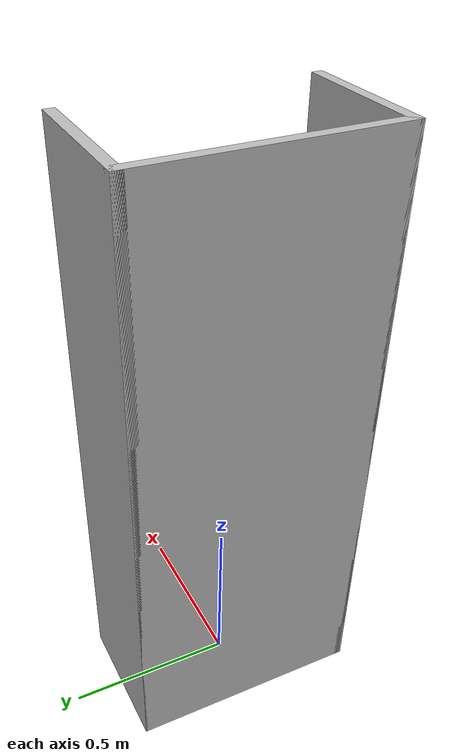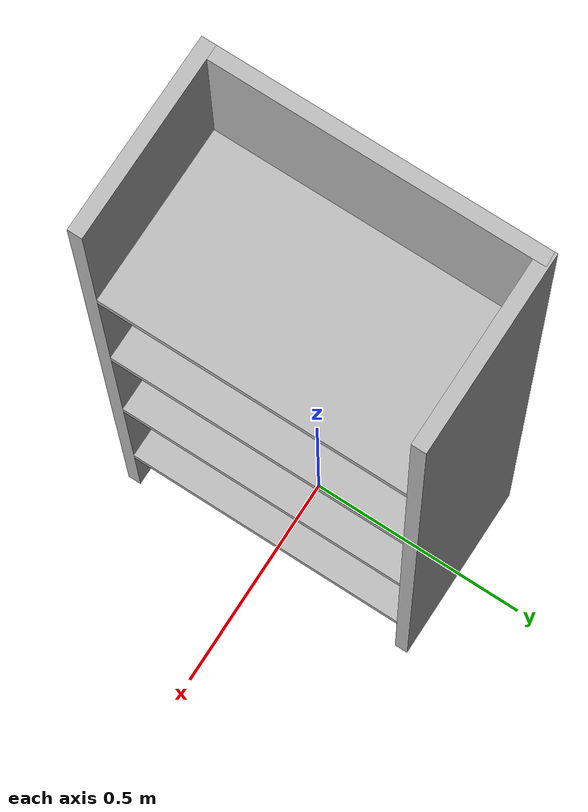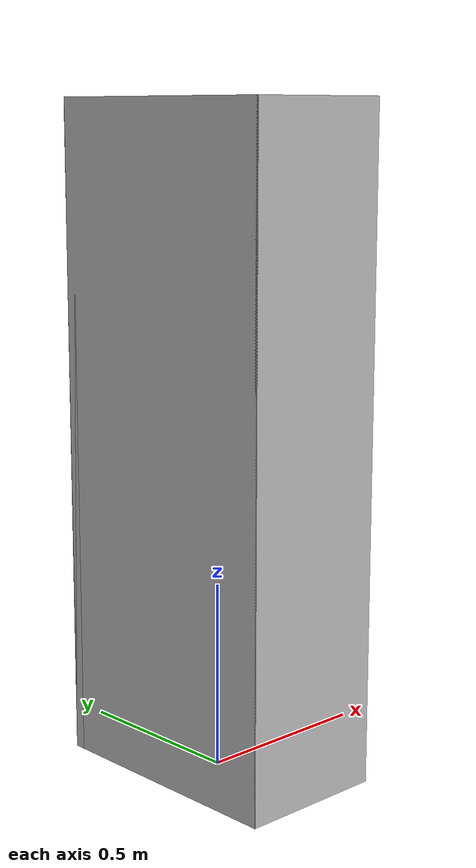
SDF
<?xml version="1.0" ?>
<sdf version="1.6">
  <model name="rwc2023/black_cabinet">
    <static>true</static>
    <link name="1_link">
      <collision name="1_col">
        <geometry>
          <box>
            <size>0.405 0.03 1.755</size>
          </box>
        </geometry>
      </collision>
      <visual name="1_vis">
        <geometry>
          <box>
            <size>0.405 0.03 1.755</size>
          </box>
        </geometry>
      </visual>
      <pose>0.0 -0.3375 0.8775 0 0 0</pose>
    </link>
    <link name="2_link">
      <collision name="2_col">
        <geometry>
          <box>
            <size>0.405 0.03 1.755</size>
          </box>
        </geometry>
      </collision>
      <visual name="2_vis">
        <geometry>
          <box>
            <size>0.405 0.03 1.755</size>
          </box>
        </geometry>
      </visual>
      <pose>0.0 0.3375 0.8775 0 0 0</pose>
    </link>
    <link name="3_link">
      <collision name="3_col">
        <geometry>
          <box>
            <size>0.03 0.705 1.755</size>
          </box>
        </geometry>
      </collision>
      <visual name="3_vis">
        <geometry>
          <box>
            <size>0.03 0.705 1.755</size>
          </box>
        </geometry>
      </visual>
      <pose>-0.1875 0.0 0.8775 0 0 0</pose>
    </link>
    <link name="5_link">
      <collision name="5_col">
        <geometry>
          <box>
            <size>0.375 0.645 0.02</size>
          </box>
        </geometry>
      </collision>
      <visual name="5_vis">
        <geometry>
          <box>
            <size>0.375 0.645 0.02</size>
          </box>
        </geometry>
      </visual>
      <pose>0.015 0.0 0.245 0 0 0</pose>
    </link>
    <link name="6_link">
      <collision name="6_col">
        <geometry>
          <box>
            <size>0.375 0.645 0.02</size>
          </box>
        </geometry>
      </collision>
      <visual name="6_vis">
        <geometry>
          <box>
            <size>0.375 0.645 0.02</size>
          </box>
        </geometry>
      </visual>
      <pose>0.015 0.0 0.625 0 0 0</pose>
    </link>
    <link name="7_link">
      <collision name="7_col">
        <geometry>
          <box>
            <size>0.375 0.645 0.02</size>
          </box>
        </geometry>
      </collision>
      <visual name="7_vis">
        <geometry>
          <box>
            <size>0.375 0.645 0.02</size>
          </box>
        </geometry>
      </visual>
      <pose>0.015 0.0 1.005 0 0 0</pose>
    </link>
    <link name="8_link">
      <collision name="8_col">
        <geometry>
          <box>
            <size>0.375 0.645 0.02</size>
          </box>
        </geometry>
      </collision>
      <visual name="8_vis">
        <geometry>
          <box>
            <size>0.375 0.645 0.02</size>
          </box>
        </geometry>
      </visual>
      <pose>0.015 0.0 1.385 0 0 0</pose>
    </link>
    <link name="in_front_of">
      <virtual_volume name="in_front_of_vv">
        <geometry>
          <box>
            <size>0.2 0.505 0.01</size>
          </box>
        </geometry>
        <pose>0.7025 0.0 0.005 0 0 0</pose>
      </virtual_volume>
    </link>
    <link name="shelf1">
      <virtual_volume name="shelf1_vv">
        <geometry>
          <box>
            <size>0.355 0.585 0.25</size>
          </box>
        </geometry>
        <pose>0.015 0.0 0.4 0 0 0</pose>
      </virtual_volume>
    </link>
    <link name="shelf2">
      <virtual_volume name="shelf2_vv">
        <geometry>
          <box>
            <size>0.355 0.585 0.25</size>
          </box>
        </geometry>
        <pose>0.015 0.0 0.78 0 0 0</pose>
      </virtual_volume>
    </link>
    <link name="shelf3">
      <virtual_volume name="shelf3_vv">
        <geometry>
          <box>
            <size>0.355 0.585 0.25</size>
          </box>
        </geometry>
        <pose>0.015 0.0 1.16 0 0 0</pose>
      </virtual_volume>
    </link>
    <link name="shelf4">
      <virtual_volume name="shelf4_vv">
        <geometry>
          <box>
            <size>0.355 0.585 0.25</size>
          </box>
        </geometry>
        <pose>0.015 0.0 1.54 0 0 0</pose>
      </virtual_volume>
    </link>
  </model>
</sdf>
